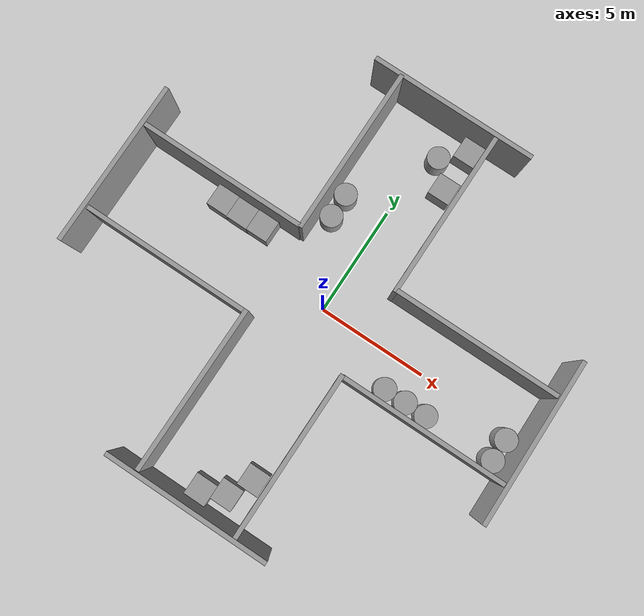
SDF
<sdf version="1.4">
 <world name="default">
  <light name="sun" type="directional">
   <pose>0 0 10 0 -0 0</pose>
   <diffuse>0.8 0.8 0.8 1</diffuse>
   <specular>0.2 0.2 0.2 1</specular>
   <attenuation>
    <range>1000</range>
    <constant>0.9</constant>
    <linear>0.01</linear>
    <quadratic>0.001</quadratic>
   </attenuation>
   <direction>-0.5 0.1 -0.9</direction>
  </light>
  <model name="ground_plane">
   <static>1</static>
   <link name="link">
    <collision name="collision">
     <geometry><plane><normal>0 0 1</normal><size>100 100</size></plane></geometry>
     <surface><friction><ode><mu>100</mu><mu2>50</mu2></ode></friction></surface>
    </collision>
    <visual name="visual">
     <cast_shadows>0</cast_shadows>
     <geometry><plane><normal>0 0 1</normal><size>100 100</size></plane></geometry>
     <material>
      <script><uri>file://media/materials/scripts/gazebo.material</uri><name>Gazebo/Grey</name></script>
     </material>
    </visual>
    <velocity_decay><linear>0</linear><angular>0</angular></velocity_decay>
   </link>
  </model>
  <physics type="ode">
   <max_step_size>0.001</max_step_size>
   <real_time_factor>1</real_time_factor>
   <real_time_update_rate>0.0</real_time_update_rate>
   <gravity>0 0 -9.8</gravity>
  </physics>
  <scene><ambient>0.4 0.4 0.4 1</ambient><background>0.7 0.7 0.7 1</background><shadows>1</shadows></scene>
  <spherical_coordinates>
   <surface_model>EARTH_WGS84</surface_model>
   <latitude_deg>0</latitude_deg>
   <longitude_deg>0</longitude_deg>
   <elevation>0</elevation>
   <heading_deg>0</heading_deg>
  </spherical_coordinates>
  <model name="grey_wall">
   <static>1</static>
   <link name="link">
    <pose>0 0 1.4 0 -0 0</pose>
    <collision name="collision"><geometry><box><size>7.5 0.2 2.8</size></box></geometry></collision>
    <visual name="visual">
     <cast_shadows>0</cast_shadows>
     <geometry><box><size>7.5 0.2 2.8</size></box></geometry>
     <material>
      <script>
       <uri>model://grey_wall/materials/scripts</uri>
       <uri>model://grey_wall/materials/textures</uri>
       <name>vrc/grey_wall</name>
      </script>
     </material>
    </visual>
    <velocity_decay><linear>0</linear><angular>0</angular></velocity_decay>
   </link>
   <pose>-6.22686 2.05821 0 0 -0 0</pose>
  </model>
  <model name="grey_wall_0">
   <static>1</static>
   <link name="link">
    <pose>0 0 1.4 0 -0 0</pose>
    <collision name="collision"><geometry><box><size>7.5 0.2 2.8</size></box></geometry></collision>
    <visual name="visual">
     <cast_shadows>0</cast_shadows>
     <geometry><box><size>7.5 0.2 2.8</size></box></geometry>
     <material>
      <script>
       <uri>model://grey_wall/materials/scripts</uri>
       <uri>model://grey_wall/materials/textures</uri>
       <name>vrc/grey_wall</name>
      </script>
     </material>
    </visual>
    <velocity_decay><linear>0</linear><angular>0</angular></velocity_decay>
   </link>
   <pose>-6.17814 -1.99553 0 0 -0 0</pose>
  </model>
  <model name="grey_wall_1">
   <static>1</static>
   <link name="link">
    <pose>0 0 1.4 0 -0 0</pose>
    <collision name="collision"><geometry><box><size>7.5 0.2 2.8</size></box></geometry></collision>
    <visual name="visual">
     <cast_shadows>0</cast_shadows>
     <geometry><box><size>7.5 0.2 2.8</size></box></geometry>
     <material>
      <script>
       <uri>model://grey_wall/materials/scripts</uri>
       <uri>model://grey_wall/materials/textures</uri>
       <name>vrc/grey_wall</name>
      </script>
     </material>
    </visual>
    <velocity_decay><linear>0</linear><angular>0</angular></velocity_decay>
   </link>
   <pose>5.91948 2.01473 0 0 -0 0</pose>
  </model>
  <model name="grey_wall_2">
   <static>1</static>
   <link name="link">
    <pose>0 0 1.4 0 -0 0</pose>
    <collision name="collision"><geometry><box><size>7.5 0.2 2.8</size></box></geometry></collision>
    <visual name="visual">
     <cast_shadows>0</cast_shadows>
     <geometry><box><size>7.5 0.2 2.8</size></box></geometry>
     <material>
      <script>
       <uri>model://grey_wall/materials/scripts</uri>
       <uri>model://grey_wall/materials/textures</uri>
       <name>vrc/grey_wall</name>
      </script>
     </material>
    </visual>
    <velocity_decay><linear>0</linear><angular>0</angular></velocity_decay>
   </link>
   <pose>6 -2 0 0 -0 0</pose>
  </model>
  <model name="grey_wall_3">
   <static>1</static>
   <link name="link">
    <pose>0 0 1.4 0 -0 0</pose>
    <collision name="collision"><geometry><box><size>7.5 0.2 2.8</size></box></geometry></collision>
    <visual name="visual">
     <cast_shadows>0</cast_shadows>
     <geometry><box><size>7.5 0.2 2.8</size></box></geometry>
     <material>
      <script>
       <uri>model://grey_wall/materials/scripts</uri>
       <uri>model://grey_wall/materials/textures</uri>
       <name>vrc/grey_wall</name>
      </script>
     </material>
    </visual>
    <velocity_decay><linear>0</linear><angular>0</angular></velocity_decay>
   </link>
   <pose>-2.33854 -5.64424 0 0 -0 1.5694</pose>
  </model>
  <model name="grey_wall_4">
   <static>1</static>
   <link name="link">
    <pose>0 0 1.4 0 -0 0</pose>
    <collision name="collision"><geometry><box><size>7.5 0.2 2.8</size></box></geometry></collision>
    <visual name="visual">
     <cast_shadows>0</cast_shadows>
     <geometry><box><size>7.5 0.2 2.8</size></box></geometry>
     <material>
      <script>
       <uri>model://grey_wall/materials/scripts</uri>
       <uri>model://grey_wall/materials/textures</uri>
       <name>vrc/grey_wall</name>
      </script>
     </material>
    </visual>
    <velocity_decay><linear>0</linear><angular>0</angular></velocity_decay>
   </link>
   <pose>-2.44146 5.75294 0 0 0 -1.56607</pose>
  </model>
  <model name="grey_wall_5">
   <static>1</static>
   <link name="link">
    <pose>0 0 1.4 0 -0 0</pose>
    <collision name="collision"><geometry><box><size>7.5 0.2 2.8</size></box></geometry></collision>
    <visual name="visual">
     <cast_shadows>0</cast_shadows>
     <geometry><box><size>7.5 0.2 2.8</size></box></geometry>
     <material>
      <script>
       <uri>model://grey_wall/materials/scripts</uri>
       <uri>model://grey_wall/materials/textures</uri>
       <name>vrc/grey_wall</name>
      </script>
     </material>
    </visual>
    <velocity_decay><linear>0</linear><angular>0</angular></velocity_decay>
   </link>
   <pose>2.22344 -5.67492 0 0 0 -1.56988</pose>
  </model>
  <model name="grey_wall_6">
   <static>1</static>
   <link name="link">
    <pose>0 0 1.4 0 -0 0</pose>
    <collision name="collision"><geometry><box><size>7.5 0.2 2.8</size></box></geometry></collision>
    <visual name="visual">
     <cast_shadows>0</cast_shadows>
     <geometry><box><size>7.5 0.2 2.8</size></box></geometry>
     <material>
      <script>
       <uri>model://grey_wall/materials/scripts</uri>
       <uri>model://grey_wall/materials/textures</uri>
       <name>vrc/grey_wall</name>
      </script>
     </material>
    </visual>
    <velocity_decay><linear>0</linear><angular>0</angular></velocity_decay>
   </link>
   <pose>2.13059 5.65683 0 0 0 -1.56846</pose>
  </model>
  <model name="grey_wall_7">
   <static>1</static>
   <link name="link">
    <pose>0 0 1.4 0 -0 0</pose>
    <collision name="collision"><geometry><box><size>7.5 0.2 2.8</size></box></geometry></collision>
    <visual name="visual">
     <cast_shadows>0</cast_shadows>
     <geometry><box><size>7.5 0.2 2.8</size></box></geometry>
     <material>
      <script>
       <uri>model://grey_wall/materials/scripts</uri>
       <uri>model://grey_wall/materials/textures</uri>
       <name>vrc/grey_wall</name>
      </script>
     </material>
    </visual>
    <velocity_decay><linear>0</linear><angular>0</angular></velocity_decay>
   </link>
   <pose>0 -9.52041 0 0 -0 0</pose>
  </model>
  <model name="grey_wall_8">
   <static>1</static>
   <link name="link">
    <pose>0 0 1.4 0 -0 0</pose>
    <collision name="collision"><geometry><box><size>7.5 0.2 2.8</size></box></geometry></collision>
    <visual name="visual">
     <cast_shadows>0</cast_shadows>
     <geometry><box><size>7.5 0.2 2.8</size></box></geometry>
     <material>
      <script>
       <uri>model://grey_wall/materials/scripts</uri>
       <uri>model://grey_wall/materials/textures</uri>
       <name>vrc/grey_wall</name>
      </script>
     </material>
    </visual>
    <velocity_decay><linear>0</linear><angular>0</angular></velocity_decay>
   </link>
   <pose>0 9.51502 0 0 -0 0</pose>
  </model>
  <model name="grey_wall_9">
   <static>1</static>
   <link name="link">
    <pose>0 0 1.4 0 -0 0</pose>
    <collision name="collision"><geometry><box><size>7.5 0.2 2.8</size></box></geometry></collision>
    <visual name="visual">
     <cast_shadows>0</cast_shadows>
     <geometry><box><size>7.5 0.2 2.8</size></box></geometry>
     <material>
      <script>
       <uri>model://grey_wall/materials/scripts</uri>
       <uri>model://grey_wall/materials/textures</uri>
       <name>vrc/grey_wall</name>
      </script>
     </material>
    </visual>
    <velocity_decay><linear>0</linear><angular>0</angular></velocity_decay>
   </link>
   <pose>-10.0897 0.037349 0 0 0 -1.5714</pose>
  </model>
  <model name="grey_wall_10">
   <static>1</static>
   <link name="link">
    <pose>0 0 1.4 0 -0 0</pose>
    <collision name="collision"><geometry><box><size>7.5 0.2 2.8</size></box></geometry></collision>
    <visual name="visual">
     <cast_shadows>0</cast_shadows>
     <geometry><box><size>7.5 0.2 2.8</size></box></geometry>
     <material>
      <script>
       <uri>model://grey_wall/materials/scripts</uri>
       <uri>model://grey_wall/materials/textures</uri>
       <name>vrc/grey_wall</name>
      </script>
     </material>
    </visual>
    <velocity_decay><linear>0</linear><angular>0</angular></velocity_decay>
   </link>
   <pose>9.84156 0.001758 0 0 0 -1.55861</pose>
  </model>
  <model name="unit_box_1">
   <pose>-6 1.45821 0.5 0 -0 0</pose>
   <link name="link">
    <inertial>
     <mass>1</mass>
     <inertia><ixx>1</ixx><ixy>0</ixy><ixz>0</ixz><iyy>1</iyy><iyz>0</iyz><izz>1</izz></inertia>
    </inertial>
    <collision name="collision"><geometry><box><size>1 1 1</size></box></geometry></collision>
    <visual name="visual">
     <geometry><box><size>1 1 1</size></box></geometry>
     <material>
      <script><uri>file://media/materials/scripts/gazebo.material</uri><name>Gazebo/Grey</name></script>
     </material>
    </visual>
    <velocity_decay><linear>0</linear><angular>0</angular></velocity_decay>
   </link>
   <static>0</static>
  </model>
  <model name="unit_box_2">
   <pose>-5 1.44783 0.5 0 -0 0</pose>
   <link name="link">
    <inertial>
     <mass>1</mass>
     <inertia><ixx>1</ixx><ixy>0</ixy><ixz>0</ixz><iyy>1</iyy><iyz>0</iyz><izz>1</izz></inertia>
    </inertial>
    <collision name="collision"><geometry><box><size>1 1 1</size></box></geometry></collision>
    <visual name="visual">
     <geometry><box><size>1 1 1</size></box></geometry>
     <material>
      <script><uri>file://media/materials/scripts/gazebo.material</uri><name>Gazebo/Grey</name></script>
     </material>
    </visual>
    <velocity_decay><linear>0</linear><angular>0</angular></velocity_decay>
   </link>
   <static>0</static>
  </model>
  <model name="unit_box_3">
   <pose>-4 1.45821 0.5 0 -0 0</pose>
   <link name="link">
    <inertial>
     <mass>1</mass>
     <inertia><ixx>1</ixx><ixy>0</ixy><ixz>0</ixz><iyy>1</iyy><iyz>0</iyz><izz>1</izz></inertia>
    </inertial>
    <collision name="collision"><geometry><box><size>1 1 1</size></box></geometry></collision>
    <visual name="visual">
     <geometry><box><size>1 1 1</size></box></geometry>
     <material>
      <script><uri>file://media/materials/scripts/gazebo.material</uri><name>Gazebo/Grey</name></script>
     </material>
    </visual>
    <velocity_decay><linear>0</linear><angular>0</angular></velocity_decay>
   </link>
   <static>0</static>
  </model>
  <model name="unit_cylinder_1">
   <pose>4 -1.4 0.499999 0 -0 0</pose>
   <link name="link">
    <inertial>
     <mass>1</mass>
     <inertia><ixx>1</ixx><ixy>0</ixy><ixz>0</ixz><iyy>1</iyy><iyz>0</iyz><izz>1</izz></inertia>
    </inertial>
    <collision name="collision">
     <geometry><cylinder><radius>0.5</radius><length>1</length></cylinder></geometry>
    </collision>
    <visual name="visual">
     <geometry><cylinder><radius>0.5</radius><length>1</length></cylinder></geometry>
     <material>
      <script><uri>file://media/materials/scripts/gazebo.material</uri><name>Gazebo/Grey</name></script>
     </material>
    </visual>
    <velocity_decay><linear>0</linear><angular>0</angular></velocity_decay>
   </link>
   <static>0</static>
  </model>
  <model name="unit_cylinder_2">
   <pose>9.24326 -0.393619 0.499996 1e-06 -1e-06 -0.18255</pose>
   <link name="link">
    <inertial>
     <mass>1</mass>
     <inertia><ixx>1</ixx><ixy>0</ixy><ixz>0</ixz><iyy>1</iyy><iyz>0</iyz><izz>1</izz></inertia>
    </inertial>
    <collision name="collision">
     <geometry><cylinder><radius>0.5</radius><length>1</length></cylinder></geometry>
    </collision>
    <visual name="visual">
     <geometry><cylinder><radius>0.5</radius><length>1</length></cylinder></geometry>
     <material>
      <script><uri>file://media/materials/scripts/gazebo.material</uri><name>Gazebo/Grey</name></script>
     </material>
    </visual>
    <velocity_decay><linear>0</linear><angular>0</angular></velocity_decay>
   </link>
   <static>0</static>
  </model>
  <model name="unit_cylinder_3">
   <pose>5 -1.4 0.499991 -0 -0 -0</pose>
   <link name="link">
    <inertial>
     <mass>1</mass>
     <inertia><ixx>1</ixx><ixy>0</ixy><ixz>0</ixz><iyy>1</iyy><iyz>0</iyz><izz>1</izz></inertia>
    </inertial>
    <collision name="collision">
     <geometry><cylinder><radius>0.5</radius><length>1</length></cylinder></geometry>
    </collision>
    <visual name="visual">
     <geometry><cylinder><radius>0.5</radius><length>1</length></cylinder></geometry>
     <material>
      <script><uri>file://media/materials/scripts/gazebo.material</uri><name>Gazebo/Grey</name></script>
     </material>
    </visual>
    <velocity_decay><linear>0</linear><angular>0</angular></velocity_decay>
   </link>
   <static>0</static>
  </model>
  <model name="unit_cylinder_4">
   <pose>6 -1.4 0.499992 -1e-06 -1e-06 0</pose>
   <link name="link">
    <inertial>
     <mass>1</mass>
     <inertia><ixx>1</ixx><ixy>0</ixy><ixz>0</ixz><iyy>1</iyy><iyz>0</iyz><izz>1</izz></inertia>
    </inertial>
    <collision name="collision">
     <geometry><cylinder><radius>0.5</radius><length>1</length></cylinder></geometry>
    </collision>
    <visual name="visual">
     <geometry><cylinder><radius>0.5</radius><length>1</length></cylinder></geometry>
     <material>
      <script><uri>file://media/materials/scripts/gazebo.material</uri><name>Gazebo/Grey</name></script>
     </material>
    </visual>
    <velocity_decay><linear>0</linear><angular>0</angular></velocity_decay>
   </link>
   <static>0</static>
  </model>
  <model name="unit_cylinder_5">
   <pose>9.23587 -1.39653 0.499998 1e-06 2.64698e-23 0.202363</pose>
   <link name="link">
    <inertial>
     <mass>1</mass>
     <inertia><ixx>1</ixx><ixy>0</ixy><ixz>0</ixz><iyy>1</iyy><iyz>0</iyz><izz>1</izz></inertia>
    </inertial>
    <collision name="collision">
     <geometry><cylinder><radius>0.5</radius><length>1</length></cylinder></geometry>
    </collision>
    <visual name="visual">
     <geometry><cylinder><radius>0.5</radius><length>1</length></cylinder></geometry>
     <material>
      <script><uri>file://media/materials/scripts/gazebo.material</uri><name>Gazebo/Grey</name></script>
     </material>
    </visual>
    <velocity_decay><linear>0</linear><angular>0</angular></velocity_decay>
   </link>
   <static>0</static>
  </model>
  <model name="unit_box_5">
   <pose>-0 -8.92041 0.5 0 -0 0</pose>
   <link name="link">
    <inertial>
     <mass>1</mass>
     <inertia><ixx>1</ixx><ixy>0</ixy><ixz>0</ixz><iyy>1</iyy><iyz>0</iyz><izz>1</izz></inertia>
    </inertial>
    <collision name="collision"><geometry><box><size>1 1 1</size></box></geometry></collision>
    <visual name="visual">
     <geometry><box><size>1 1 1</size></box></geometry>
     <material>
      <script><uri>file://media/materials/scripts/gazebo.material</uri><name>Gazebo/Grey</name></script>
     </material>
    </visual>
    <velocity_decay><linear>0</linear><angular>0</angular></velocity_decay>
   </link>
   <static>0</static>
  </model>
  <model name="unit_box_6">
   <pose>1 -8.49785 0.5 0 -0 0</pose>
   <link name="link">
    <inertial>
     <mass>1</mass>
     <inertia><ixx>1</ixx><ixy>0</ixy><ixz>0</ixz><iyy>1</iyy><iyz>0</iyz><izz>1</izz></inertia>
    </inertial>
    <collision name="collision"><geometry><box><size>1 1 1</size></box></geometry></collision>
    <visual name="visual">
     <geometry><box><size>1 1 1</size></box></geometry>
     <material>
      <script><uri>file://media/materials/scripts/gazebo.material</uri><name>Gazebo/Grey</name></script>
     </material>
    </visual>
    <velocity_decay><linear>0</linear><angular>0</angular></velocity_decay>
   </link>
   <static>0</static>
  </model>
  <model name="unit_box_7">
   <pose>1.57908 -7.42103 0.5 0 -0 0</pose>
   <link name="link">
    <inertial>
     <mass>1</mass>
     <inertia><ixx>1</ixx><ixy>0</ixy><ixz>0</ixz><iyy>1</iyy><iyz>0</iyz><izz>1</izz></inertia>
    </inertial>
    <collision name="collision"><geometry><box><size>1 1 1</size></box></geometry></collision>
    <visual name="visual">
     <geometry><box><size>1 1 1</size></box></geometry>
     <material>
      <script><uri>file://media/materials/scripts/gazebo.material</uri><name>Gazebo/Grey</name></script>
     </material>
    </visual>
    <velocity_decay><linear>0</linear><angular>0</angular></velocity_decay>
   </link>
   <static>0</static>
  </model>
  <model name="unit_box_8">
   <pose>1.52113 8.9149 0.5 0 -0 0.000188</pose>
   <link name="link">
    <inertial>
     <mass>1</mass>
     <inertia><ixx>1</ixx><ixy>0</ixy><ixz>0</ixz><iyy>1</iyy><iyz>0</iyz><izz>1</izz></inertia>
    </inertial>
    <collision name="collision"><geometry><box><size>1 1 1</size></box></geometry></collision>
    <visual name="visual">
     <geometry><box><size>1 1 1</size></box></geometry>
     <material>
      <script><uri>file://media/materials/scripts/gazebo.material</uri><name>Gazebo/Grey</name></script>
     </material>
    </visual>
    <velocity_decay><linear>0</linear><angular>0</angular></velocity_decay>
   </link>
   <static>0</static>
  </model>
  <model name="unit_cylinder_6">
   <pose>0.561611 8 0.499998 1e-06 -0 0</pose>
   <link name="link">
    <inertial>
     <mass>1</mass>
     <inertia><ixx>1</ixx><ixy>0</ixy><ixz>0</ixz><iyy>1</iyy><iyz>0</iyz><izz>1</izz></inertia>
    </inertial>
    <collision name="collision">
     <geometry><cylinder><radius>0.5</radius><length>1</length></cylinder></geometry>
    </collision>
    <visual name="visual">
     <geometry><cylinder><radius>0.5</radius><length>1</length></cylinder></geometry>
     <material>
      <script><uri>file://media/materials/scripts/gazebo.material</uri><name>Gazebo/Grey</name></script>
     </material>
    </visual>
    <velocity_decay><linear>0</linear><angular>0</angular></velocity_decay>
   </link>
   <static>0</static>
  </model>
  <model name="unit_box_9">
   <pose>1.48771 7 0.5 0 -0 0</pose>
   <link name="link">
    <inertial>
     <mass>1</mass>
     <inertia><ixx>1</ixx><ixy>0</ixy><ixz>0</ixz><iyy>1</iyy><iyz>0</iyz><izz>1</izz></inertia>
    </inertial>
    <collision name="collision"><geometry><box><size>1 1 1</size></box></geometry></collision>
    <visual name="visual">
     <geometry><box><size>1 1 1</size></box></geometry>
     <material>
      <script><uri>file://media/materials/scripts/gazebo.material</uri><name>Gazebo/Grey</name></script>
     </material>
    </visual>
    <velocity_decay><linear>0</linear><angular>0</angular></velocity_decay>
   </link>
   <static>0</static>
  </model>
  <model name="unit_cylinder_7">
   <pose>-1.83041 3.41687 0.499998 0 -0 0</pose>
   <link name="link">
    <inertial>
     <mass>1</mass>
     <inertia><ixx>1</ixx><ixy>0</ixy><ixz>0</ixz><iyy>1</iyy><iyz>0</iyz><izz>1</izz></inertia>
    </inertial>
    <collision name="collision">
     <geometry><cylinder><radius>0.5</radius><length>1</length></cylinder></geometry>
    </collision>
    <visual name="visual">
     <geometry><cylinder><radius>0.5</radius><length>1</length></cylinder></geometry>
     <material>
      <script><uri>file://media/materials/scripts/gazebo.material</uri><name>Gazebo/Grey</name></script>
     </material>
    </visual>
    <velocity_decay><linear>0</linear><angular>0</angular></velocity_decay>
   </link>
   <static>0</static>
  </model>
  <model name="unit_cylinder_8">
   <pose>-1.83559 4.51222 0.499992 0 -0 0</pose>
   <link name="link">
    <inertial>
     <mass>1</mass>
     <inertia><ixx>1</ixx><ixy>0</ixy><ixz>0</ixz><iyy>1</iyy><iyz>0</iyz><izz>1</izz></inertia>
    </inertial>
    <collision name="collision">
     <geometry><cylinder><radius>0.5</radius><length>1</length></cylinder></geometry>
    </collision>
    <visual name="visual">
     <geometry><cylinder><radius>0.5</radius><length>1</length></cylinder></geometry>
     <material>
      <script><uri>file://media/materials/scripts/gazebo.material</uri><name>Gazebo/Grey</name></script>
     </material>
    </visual>
    <velocity_decay><linear>0</linear><angular>0</angular></velocity_decay>
   </link>
   <static>0</static>
  </model>
 </world>
</sdf>
